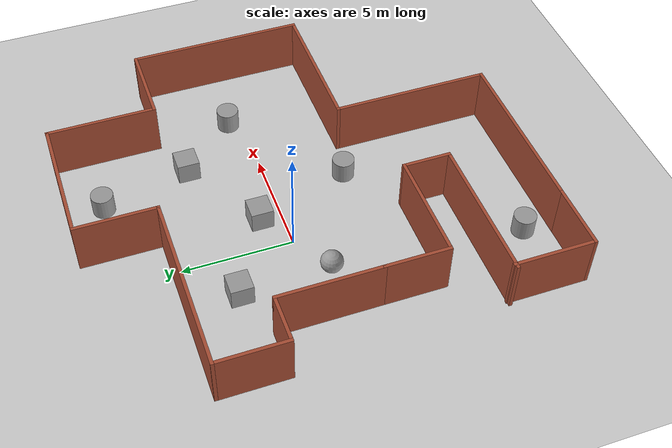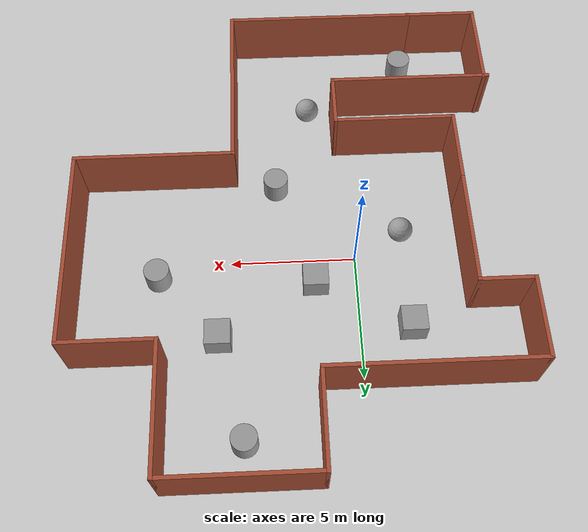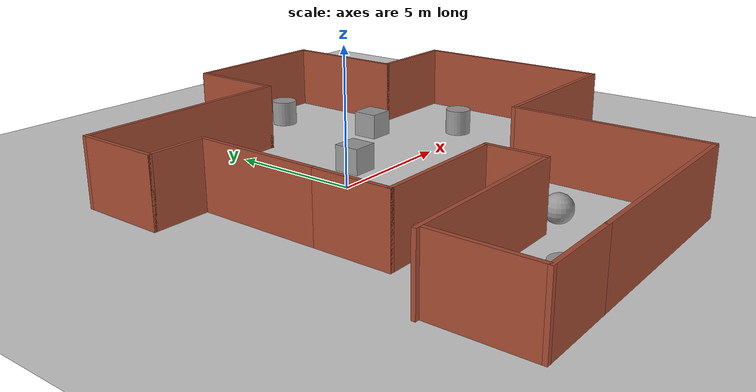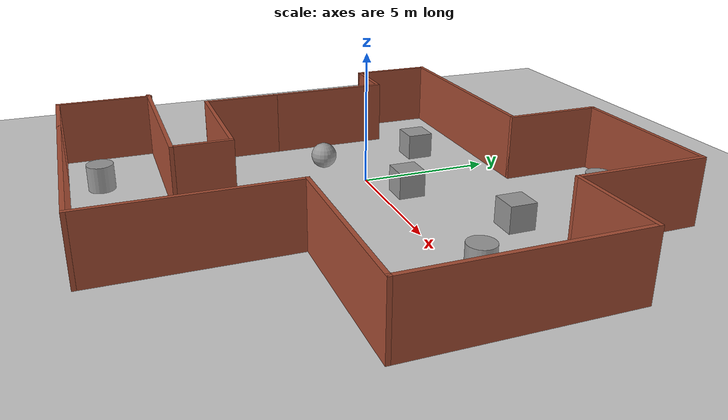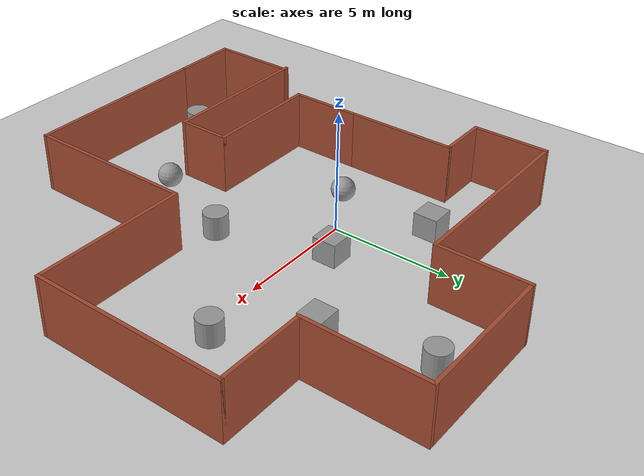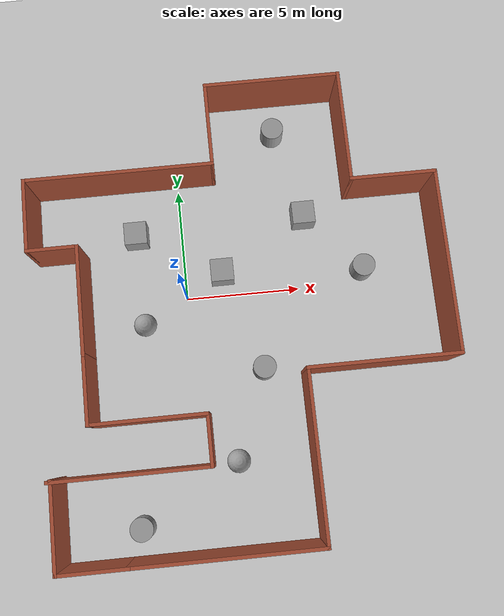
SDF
<sdf version="1.7">
 <world name="default">
  <light name="sun" type="directional">
   <pose>0 0 10 0 -0 0</pose>
   <diffuse>0.8 0.8 0.8 1</diffuse>
   <specular>0.2 0.2 0.2 1</specular>
   <attenuation>
    <range>1000</range>
    <constant>0.9</constant>
    <linear>0.01</linear>
    <quadratic>0.001</quadratic>
   </attenuation>
   <direction>-0.5 0.1 -0.9</direction>
   <spot><inner_angle>0</inner_angle><outer_angle>0</outer_angle><falloff>0</falloff></spot>
  </light>
  <model name="ground_plane">
   <static>1</static>
   <link name="link">
    <collision name="collision">
     <geometry><plane><normal>0 0 1</normal><size>100 100</size></plane></geometry>
     <surface>
      <contact><collide_bitmask>65535</collide_bitmask></contact>
      <friction><ode><mu>100</mu><mu2>50</mu2></ode></friction>
     </surface>
    </collision>
    <visual name="visual">
     <cast_shadows>0</cast_shadows>
     <geometry><plane><normal>0 0 1</normal><size>100 100</size></plane></geometry>
     <material>
      <script><uri>file://media/materials/scripts/gazebo.material</uri><name>Gazebo/Grey</name></script>
     </material>
    </visual>
   </link>
  </model>
  <gravity>0 0 -9.8</gravity>
  <magnetic_field>6e-06 2.3e-05 -4.2e-05</magnetic_field>
  <atmosphere type="adiabatic"/>
  <physics type="ode">
   <max_step_size>0.001</max_step_size>
   <real_time_factor>1</real_time_factor>
   <real_time_update_rate>1000</real_time_update_rate>
  </physics>
  <scene><ambient>0.4 0.4 0.4 1</ambient><background>0.7 0.7 0.7 1</background><shadows>1</shadows></scene>
  <spherical_coordinates>
   <surface_model>EARTH_WGS84</surface_model>
   <latitude_deg>0</latitude_deg>
   <longitude_deg>0</longitude_deg>
   <elevation>0</elevation>
   <heading_deg>0</heading_deg>
  </spherical_coordinates>
  <model name="rmp039">
   <pose>2.347 -0.982 0 0 -0 0</pose>
   <link name="Wall_11">
    <collision name="Wall_11_Collision">
     <geometry><box><size>8.25 0.15 2.5</size></box></geometry>
     <pose>0 0 1.25 0 -0 0</pose>
    </collision>
    <visual name="Wall_11_Visual">
     <pose>0 0 1.25 0 -0 0</pose>
     <geometry><box><size>8.25 0.15 2.5</size></box></geometry>
     <material>
      <script><uri>file://media/materials/scripts/gazebo.material</uri><name>Gazebo/Bricks</name></script>
      <ambient>1 1 1 1</ambient>
     </material>
     <meta><layer>0</layer></meta>
    </visual>
    <pose>-4.725 6.3 0 0 -0 0</pose>
   </link>
   <link name="Wall_12">
    <collision name="Wall_12_Collision">
     <geometry><box><size>3.75 0.15 2.5</size></box></geometry>
     <pose>0 0 1.25 0 -0 0</pose>
    </collision>
    <visual name="Wall_12_Visual">
     <pose>0 0 1.25 0 -0 0</pose>
     <geometry><box><size>3.75 0.15 2.5</size></box></geometry>
     <material>
      <script><uri>file://media/materials/scripts/gazebo.material</uri><name>Gazebo/Bricks</name></script>
      <ambient>1 1 1 1</ambient>
     </material>
     <meta><layer>0</layer></meta>
    </visual>
    <pose>-0.675 8.1 0 0 -0 1.5708</pose>
   </link>
   <link name="Wall_13">
    <collision name="Wall_13_Collision">
     <geometry><box><size>6 0.15 2.5</size></box></geometry>
     <pose>0 0 1.25 0 -0 0</pose>
    </collision>
    <visual name="Wall_13_Visual">
     <pose>0 0 1.25 0 -0 0</pose>
     <geometry><box><size>6 0.15 2.5</size></box></geometry>
     <material>
      <script><uri>file://media/materials/scripts/gazebo.material</uri><name>Gazebo/Bricks</name></script>
      <ambient>1 1 1 1</ambient>
     </material>
     <meta><layer>0</layer></meta>
    </visual>
    <pose>2.25 9.9 0 0 -0 0</pose>
   </link>
   <link name="Wall_14">
    <collision name="Wall_14_Collision">
     <geometry><box><size>5 0.15 2.5</size></box></geometry>
     <pose>0 0 1.25 0 -0 0</pose>
    </collision>
    <visual name="Wall_14_Visual">
     <pose>0 0 1.25 0 -0 0</pose>
     <geometry><box><size>5 0.15 2.5</size></box></geometry>
     <material>
      <script><uri>file://media/materials/scripts/gazebo.material</uri><name>Gazebo/Bricks</name></script>
      <ambient>1 1 1 1</ambient>
     </material>
     <meta><layer>0</layer></meta>
    </visual>
    <pose>5.175 7.475 0 0 -0 -1.5708</pose>
   </link>
   <link name="Wall_15">
    <collision name="Wall_15_Collision">
     <geometry><box><size>3.75 0.15 2.5</size></box></geometry>
     <pose>0 0 1.25 0 -0 0</pose>
    </collision>
    <visual name="Wall_15_Visual">
     <pose>0 0 1.25 0 -0 0</pose>
     <geometry><box><size>3.75 0.15 2.5</size></box></geometry>
     <material>
      <script><uri>file://media/materials/scripts/gazebo.material</uri><name>Gazebo/Bricks</name></script>
      <ambient>1 1 1 1</ambient>
     </material>
     <meta><layer>0</layer></meta>
    </visual>
    <pose>6.975 5.05 0 0 -0 0</pose>
   </link>
   <link name="Wall_16">
    <collision name="Wall_16_Collision">
     <geometry><box><size>8 0.15 2.5</size></box></geometry>
     <pose>0 0 1.25 0 -0 0</pose>
    </collision>
    <visual name="Wall_16_Visual">
     <pose>0 0 1.25 0 -0 0</pose>
     <geometry><box><size>8 0.15 2.5</size></box></geometry>
     <material>
      <script><uri>file://media/materials/scripts/gazebo.material</uri><name>Gazebo/Bricks</name></script>
      <ambient>1 1 1 1</ambient>
     </material>
     <meta><layer>0</layer></meta>
    </visual>
    <pose>8.775 1.125 0 0 -0 -1.5708</pose>
   </link>
   <link name="Wall_17">
    <collision name="Wall_17_Collision">
     <geometry><box><size>6.5 0.15 2.5</size></box></geometry>
     <pose>0 0 1.25 0 -0 0</pose>
    </collision>
    <visual name="Wall_17_Visual">
     <pose>0 0 1.25 0 -0 0</pose>
     <geometry><box><size>6.5 0.15 2.5</size></box></geometry>
     <material>
      <script><uri>file://media/materials/scripts/gazebo.material</uri><name>Gazebo/Bricks</name></script>
      <ambient>1 1 1 1</ambient>
     </material>
     <meta><layer>0</layer></meta>
    </visual>
    <pose>5.6 -2.8 0 0 -0 3.14159</pose>
   </link>
   <link name="Wall_18">
    <collision name="Wall_18_Collision">
     <geometry><box><size>7.25 0.15 2.5</size></box></geometry>
     <pose>0 0 1.25 0 -0 0</pose>
    </collision>
    <visual name="Wall_18_Visual">
     <pose>0 0 1.25 0 -0 0</pose>
     <geometry><box><size>7.25 0.15 2.5</size></box></geometry>
     <material>
      <script><uri>file://media/materials/scripts/gazebo.material</uri><name>Gazebo/Bricks</name></script>
      <ambient>1 1 1 1</ambient>
     </material>
     <meta><layer>0</layer></meta>
    </visual>
    <pose>2.425 -6.35 0 0 -0 -1.5708</pose>
   </link>
   <link name="Wall_19">
    <collision name="Wall_19_Collision">
     <geometry><box><size>8 0.15 2.5</size></box></geometry>
     <pose>0 0 1.25 0 -0 0</pose>
    </collision>
    <visual name="Wall_19_Visual">
     <pose>0 0 1.25 0 -0 0</pose>
     <geometry><box><size>8 0.15 2.5</size></box></geometry>
     <material>
      <script><uri>file://media/materials/scripts/gazebo.material</uri><name>Gazebo/Bricks</name></script>
      <ambient>1 1 1 1</ambient>
     </material>
     <meta><layer>0</layer></meta>
    </visual>
    <pose>-1.5 -9.9 0 0 -0 3.14159</pose>
   </link>
   <link name="Wall_26">
    <collision name="Wall_26_Collision">
     <geometry><box><size>3.25 0.15 2.5</size></box></geometry>
     <pose>0 0 1.25 0 -0 0</pose>
    </collision>
    <visual name="Wall_26_Visual">
     <pose>0 0 1.25 0 -0 0</pose>
     <geometry><box><size>3.25 0.15 2.5</size></box></geometry>
     <material>
      <script><uri>file://media/materials/scripts/gazebo.material</uri><name>Gazebo/Bricks</name></script>
      <ambient>1 1 1 1</ambient>
     </material>
     <meta><layer>0</layer></meta>
    </visual>
    <pose>-8.775 4.75 0 0 -0 -1.5708</pose>
   </link>
   <link name="Wall_27">
    <collision name="Wall_27_Collision">
     <geometry><box><size>2.25 0.15 2.5</size></box></geometry>
     <pose>0 0 1.25 0 -0 0</pose>
    </collision>
    <visual name="Wall_27_Visual">
     <pose>0 0 1.25 0 -0 0</pose>
     <geometry><box><size>2.25 0.15 2.5</size></box></geometry>
     <material>
      <script><uri>file://media/materials/scripts/gazebo.material</uri><name>Gazebo/Bricks</name></script>
      <ambient>1 1 1 1</ambient>
     </material>
     <meta><layer>0</layer></meta>
    </visual>
    <pose>-7.725 3.2 0 0 -0 0</pose>
   </link>
   <link name="Wall_28">
    <collision name="Wall_28_Collision">
     <geometry><box><size>4.75 0.15 2.5</size></box></geometry>
     <pose>0 0 1.25 0 -0 0</pose>
    </collision>
    <visual name="Wall_28_Visual">
     <pose>0 0 1.25 0 -0 0</pose>
     <geometry><box><size>4.75 0.15 2.5</size></box></geometry>
     <material>
      <script><uri>file://media/materials/scripts/gazebo.material</uri><name>Gazebo/Bricks</name></script>
      <ambient>1 1 1 1</ambient>
     </material>
     <meta><layer>0</layer></meta>
    </visual>
    <pose>-6.675 0.9 0 0 -0 -1.5708</pose>
   </link>
   <link name="Wall_30">
    <collision name="Wall_30_Collision">
     <geometry><box><size>3 0.15 2.5</size></box></geometry>
     <pose>0 0 1.25 0 -0 0</pose>
    </collision>
    <visual name="Wall_30_Visual">
     <pose>0 0 1.25 0 -0 0</pose>
     <geometry><box><size>3 0.15 2.5</size></box></geometry>
     <material>
      <script><uri>file://media/materials/scripts/gazebo.material</uri><name>Gazebo/Bricks</name></script>
      <ambient>1 1 1 1</ambient>
     </material>
     <meta><layer>0</layer></meta>
    </visual>
    <pose>-6.675 -2.825 0 0 -0 -1.5708</pose>
   </link>
   <link name="Wall_35">
    <collision name="Wall_35_Collision">
     <geometry><box><size>3 0.15 2.5</size></box></geometry>
     <pose>0 0 1.25 0 -0 0</pose>
    </collision>
    <visual name="Wall_35_Visual">
     <pose>0 0 1.25 0 -0 0</pose>
     <geometry><box><size>3 0.15 2.5</size></box></geometry>
     <material>
      <script><uri>file://media/materials/scripts/gazebo.material</uri><name>Gazebo/Bricks</name></script>
      <ambient>1 1 1 1</ambient>
     </material>
     <meta><layer>0</layer></meta>
    </visual>
    <pose>-6.85 -9.9 0 0 -0 3.14159</pose>
   </link>
   <link name="Wall_37">
    <collision name="Wall_37_Collision">
     <geometry><box><size>5 0.15 2.5</size></box></geometry>
     <pose>0 0 1.25 0 -0 0</pose>
    </collision>
    <visual name="Wall_37_Visual">
     <pose>0 0 1.25 0 -0 0</pose>
     <geometry><box><size>5 0.15 2.5</size></box></geometry>
     <material>
      <script><uri>file://media/materials/scripts/gazebo.material</uri><name>Gazebo/Bricks</name></script>
      <ambient>1 1 1 1</ambient>
     </material>
     <meta><layer>0</layer></meta>
    </visual>
    <pose>-4.25 -4.25 0 0 -0 0</pose>
   </link>
   <link name="Wall_38">
    <collision name="Wall_38_Collision">
     <geometry><box><size>2.25 0.15 2.5</size></box></geometry>
     <pose>0 0 1.25 0 -0 0</pose>
    </collision>
    <visual name="Wall_38_Visual">
     <pose>0 0 1.25 0 -0 0</pose>
     <geometry><box><size>2.25 0.15 2.5</size></box></geometry>
     <material>
      <script><uri>file://media/materials/scripts/gazebo.material</uri><name>Gazebo/Bricks</name></script>
      <ambient>1 1 1 1</ambient>
     </material>
     <meta><layer>0</layer></meta>
    </visual>
    <pose>-1.825 -5.3 0 0 -0 -1.5708</pose>
   </link>
   <link name="Wall_39">
    <collision name="Wall_39_Collision">
     <geometry><box><size>6.75 0.15 2.5</size></box></geometry>
     <pose>0 0 1.25 0 -0 0</pose>
    </collision>
    <visual name="Wall_39_Visual">
     <pose>0 0 1.25 0 -0 0</pose>
     <geometry><box><size>6.75 0.15 2.5</size></box></geometry>
     <material>
      <script><uri>file://media/materials/scripts/gazebo.material</uri><name>Gazebo/Bricks</name></script>
      <ambient>1 1 1 1</ambient>
     </material>
     <meta><layer>0</layer></meta>
    </visual>
    <pose>-5.125 -6.35 0 0 -0 3.14159</pose>
   </link>
   <link name="Wall_42">
    <collision name="Wall_42_Collision">
     <geometry><box><size>3.75 0.15 2.5</size></box></geometry>
     <pose>0 0 1.25 0 -0 0</pose>
    </collision>
    <visual name="Wall_42_Visual">
     <pose>0 0 1.25 0 -0 0</pose>
     <geometry><box><size>3.75 0.15 2.5</size></box></geometry>
     <material>
      <script><uri>file://media/materials/scripts/gazebo.material</uri><name>Gazebo/Bricks</name></script>
      <ambient>1 1 1 1</ambient>
     </material>
     <meta><layer>0</layer></meta>
    </visual>
    <pose>-8.275 -8.1 0 0 -0 1.5708</pose>
   </link>
   <static>1</static>
  </model>
  <model name="unit_box">
   <pose>5.4931 3.25919 0.499995 0 1e-05 0</pose>
   <link name="link">
    <inertial>
     <mass>1</mass>
     <inertia>
      <ixx>0.166667</ixx>
      <ixy>0</ixy>
      <ixz>0</ixz>
      <iyy>0.166667</iyy>
      <iyz>0</iyz>
      <izz>0.166667</izz>
     </inertia>
    </inertial>
    <collision name="collision"><geometry><box><size>1 1 1</size></box></geometry></collision>
    <visual name="visual">
     <geometry><box><size>1 1 1</size></box></geometry>
     <material>
      <script><name>Gazebo/Grey</name><uri>file://media/materials/scripts/gazebo.material</uri></script>
     </material>
    </visual>
   </link>
  </model>
  <model name="unit_box_0">
   <pose>-2.01018 3.01433 0.499995 -1e-05 -0 -0</pose>
   <link name="link">
    <inertial>
     <mass>1</mass>
     <inertia>
      <ixx>0.166667</ixx>
      <ixy>0</ixy>
      <ixz>0</ixz>
      <iyy>0.166667</iyy>
      <iyz>0</iyz>
      <izz>0.166667</izz>
     </inertia>
    </inertial>
    <collision name="collision"><geometry><box><size>1 1 1</size></box></geometry></collision>
    <visual name="visual">
     <geometry><box><size>1 1 1</size></box></geometry>
     <material>
      <script><name>Gazebo/Grey</name><uri>file://media/materials/scripts/gazebo.material</uri></script>
     </material>
    </visual>
   </link>
  </model>
  <model name="unit_sphere">
   <pose>-1.91661 -1.06513 0.5 0 -0 0</pose>
   <link name="link">
    <inertial>
     <mass>1</mass>
     <inertia><ixx>0.1</ixx><ixy>0</ixy><ixz>0</ixz><iyy>0.1</iyy><iyz>0</iyz><izz>0.1</izz></inertia>
    </inertial>
    <collision name="collision"><geometry><sphere><radius>0.5</radius></sphere></geometry></collision>
    <visual name="visual">
     <geometry><sphere><radius>0.5</radius></sphere></geometry>
     <material>
      <script><name>Gazebo/Grey</name><uri>file://media/materials/scripts/gazebo.material</uri></script>
     </material>
    </visual>
   </link>
  </model>
  <model name="unit_cylinder">
   <pose>7.88037 0.608669 0.499998 3e-06 -4e-06 0</pose>
   <link name="link">
    <inertial>
     <mass>1</mass>
     <inertia><ixx>0.145833</ixx><ixy>0</ixy><ixz>0</ixz><iyy>0.145833</iyy><iyz>0</iyz><izz>0.125</izz></inertia>
    </inertial>
    <collision name="collision">
     <geometry><cylinder><radius>0.5</radius><length>1</length></cylinder></geometry>
    </collision>
    <visual name="visual">
     <geometry><cylinder><radius>0.5</radius><length>1</length></cylinder></geometry>
     <material>
      <script><name>Gazebo/Grey</name><uri>file://media/materials/scripts/gazebo.material</uri></script>
     </material>
    </visual>
   </link>
  </model>
  <model name="unit_cylinder_0">
   <pose>3.08638 -3.43238 0.499992 -3e-06 -4e-06 -0</pose>
   <link name="link">
    <inertial>
     <mass>1</mass>
     <inertia><ixx>0.145833</ixx><ixy>0</ixy><ixz>0</ixz><iyy>0.145833</iyy><iyz>0</iyz><izz>0.125</izz></inertia>
    </inertial>
    <collision name="collision">
     <geometry><cylinder><radius>0.5</radius><length>1</length></cylinder></geometry>
    </collision>
    <visual name="visual">
     <geometry><cylinder><radius>0.5</radius><length>1</length></cylinder></geometry>
     <material>
      <script><name>Gazebo/Grey</name><uri>file://media/materials/scripts/gazebo.material</uri></script>
     </material>
    </visual>
   </link>
  </model>
  <model name="unit_box_1">
   <pose>1.64996 0.992209 0.499995 -1e-05 -0 -0</pose>
   <link name="link">
    <inertial>
     <mass>1</mass>
     <inertia>
      <ixx>0.166667</ixx>
      <ixy>0</ixy>
      <ixz>0</ixz>
      <iyy>0.166667</iyy>
      <iyz>0</iyz>
      <izz>0.166667</izz>
     </inertia>
    </inertial>
    <collision name="collision"><geometry><box><size>1 1 1</size></box></geometry></collision>
    <visual name="visual">
     <geometry><box><size>1 1 1</size></box></geometry>
     <material>
      <script><name>Gazebo/Grey</name><uri>file://media/materials/scripts/gazebo.material</uri></script>
     </material>
    </visual>
   </link>
  </model>
  <model name="unit_sphere_0">
   <pose>1.6002 -7.27726 0.5 0 -0 0</pose>
   <link name="link">
    <inertial>
     <mass>1</mass>
     <inertia><ixx>0.1</ixx><ixy>0</ixy><ixz>0</ixz><iyy>0.1</iyy><iyz>0</iyz><izz>0.1</izz></inertia>
    </inertial>
    <collision name="collision"><geometry><sphere><radius>0.5</radius></sphere></geometry></collision>
    <visual name="visual">
     <geometry><sphere><radius>0.5</radius></sphere></geometry>
     <material>
      <script><name>Gazebo/Grey</name><uri>file://media/materials/scripts/gazebo.material</uri></script>
     </material>
    </visual>
   </link>
  </model>
  <model name="unit_cylinder_1">
   <pose>-2.65971 -9.63621 0.499993 -3e-06 -4e-06 -0</pose>
   <link name="link">
    <inertial>
     <mass>1</mass>
     <inertia><ixx>0.145833</ixx><ixy>0</ixy><ixz>0</ixz><iyy>0.145833</iyy><iyz>0</iyz><izz>0.125</izz></inertia>
    </inertial>
    <collision name="collision">
     <geometry><cylinder><radius>0.5</radius><length>1</length></cylinder></geometry>
    </collision>
    <visual name="visual">
     <geometry><cylinder><radius>0.5</radius><length>1</length></cylinder></geometry>
     <material>
      <script><name>Gazebo/Grey</name><uri>file://media/materials/scripts/gazebo.material</uri></script>
     </material>
    </visual>
   </link>
  </model>
  <model name="unit_cylinder_2">
   <pose>4.52473 7.31496 0.499997 3e-06 4e-06 -0</pose>
   <link name="link">
    <inertial>
     <mass>1</mass>
     <inertia><ixx>0.145833</ixx><ixy>0</ixy><ixz>0</ixz><iyy>0.145833</iyy><iyz>0</iyz><izz>0.125</izz></inertia>
    </inertial>
    <collision name="collision">
     <geometry><cylinder><radius>0.5</radius><length>1</length></cylinder></geometry>
    </collision>
    <visual name="visual">
     <geometry><cylinder><radius>0.5</radius><length>1</length></cylinder></geometry>
     <material>
      <script><name>Gazebo/Grey</name><uri>file://media/materials/scripts/gazebo.material</uri></script>
     </material>
    </visual>
   </link>
  </model>
 </world>
</sdf>
